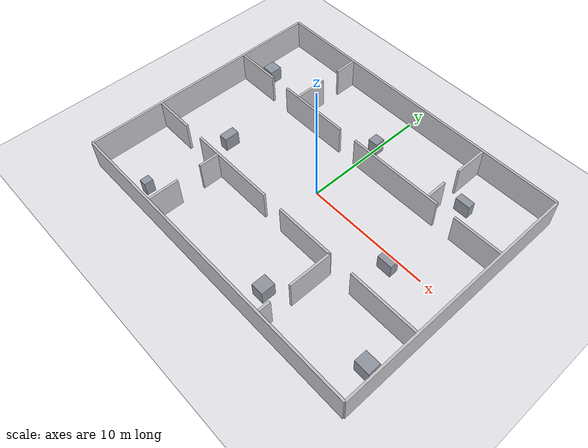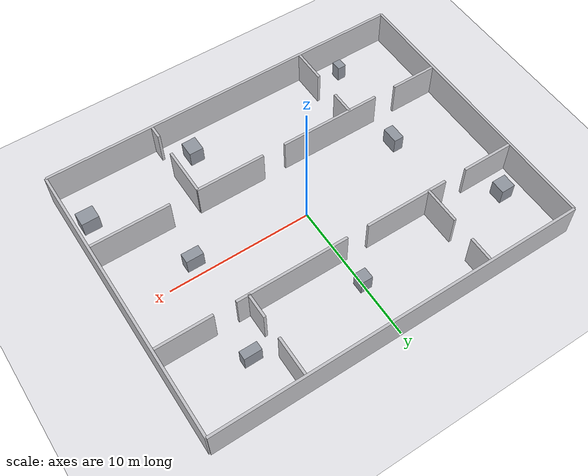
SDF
<?xml version="1.0"?>
<sdf version="1.9"><world name="new_room_world">
<plugin filename="gz-sim-physics-system" name="gz::sim::systems::Physics"/><plugin filename="gz-sim-user-commands-system" name="gz::sim::systems::UserCommands"/><plugin filename="gz-sim-scene-broadcaster-system" name="gz::sim::systems::SceneBroadcaster"/><plugin filename="gz-sim-sensors-system" name="gz::sim::systems::Sensors"><render_engine>ogre2</render_engine></plugin><plugin filename="gz-sim-imu-system" name="gz::sim::systems::Imu"/>
<physics name="new_room_realtime" type="ignored"><max_step_size>0.001</max_step_size><real_time_factor>1</real_time_factor></physics><gravity>0 0 -9.8</gravity><scene><ambient>0.85 0.85 0.87 1</ambient><background>0.68 0.68 0.71 1</background><shadows>false</shadows></scene><light name="sun" type="directional"><cast_shadows>false</cast_shadows><pose>0 0 10 0 0 0</pose><diffuse>0.95 0.95 0.95 1</diffuse><direction>-0.3 0.2 -1</direction></light>
<model name="new_room_ground"><static>true</static><link name="ground_link"><collision name="ground_collision"><geometry><plane><normal>0 0 1</normal><size>40 32</size></plane></geometry></collision><visual name="ground_visual"><geometry><plane><normal>0 0 1</normal><size>40 32</size></plane></geometry><material><ambient>0.92 0.92 0.94 1</ambient><diffuse>0.92 0.92 0.94 1</diffuse></material></visual></link></model>
<model name="mini_hospital_structure"><static>true</static><link name="structure">
<collision name="mx048_c000"><pose>0 10 1.25 0 0 0</pose><geometry><box><size>26 0.18 2.5</size></box></geometry></collision><visual name="mx048_v000"><pose>0 10 1.25 0 0 0</pose><geometry><box><size>26 0.18 2.5</size></box></geometry><material><ambient>0.78 0.78 0.80 1</ambient><diffuse>0.78 0.78 0.80 1</diffuse></material></visual>
<collision name="mx048_c001"><pose>0 -10 1.25 0 0 0</pose><geometry><box><size>26 0.18 2.5</size></box></geometry></collision><visual name="mx048_v001"><pose>0 -10 1.25 0 0 0</pose><geometry><box><size>26 0.18 2.5</size></box></geometry><material><ambient>0.78 0.78 0.80 1</ambient><diffuse>0.78 0.78 0.80 1</diffuse></material></visual>
<collision name="mx048_c002"><pose>-13 0 1.25 0 0 0</pose><geometry><box><size>0.18 20 2.5</size></box></geometry></collision><visual name="mx048_v002"><pose>-13 0 1.25 0 0 0</pose><geometry><box><size>0.18 20 2.5</size></box></geometry><material><ambient>0.78 0.78 0.80 1</ambient><diffuse>0.78 0.78 0.80 1</diffuse></material></visual>
<collision name="mx048_c003"><pose>13 0 1.25 0 0 0</pose><geometry><box><size>0.18 20 2.5</size></box></geometry></collision><visual name="mx048_v003"><pose>13 0 1.25 0 0 0</pose><geometry><box><size>0.18 20 2.5</size></box></geometry><material><ambient>0.78 0.78 0.80 1</ambient><diffuse>0.78 0.78 0.80 1</diffuse></material></visual>
<collision name="mx048_c004"><pose>-11.105 4 1.25 0 0 0</pose><geometry><box><size>3.61 0.18 2.5</size></box></geometry></collision><visual name="mx048_v004"><pose>-11.105 4 1.25 0 0 0</pose><geometry><box><size>3.61 0.18 2.5</size></box></geometry><material><ambient>0.78 0.78 0.80 1</ambient><diffuse>0.78 0.78 0.80 1</diffuse></material></visual>
<collision name="mx048_c005"><pose>-4.725 4 1.25 0 0 0</pose><geometry><box><size>5.95 0.18 2.5</size></box></geometry></collision><visual name="mx048_v005"><pose>-4.725 4 1.25 0 0 0</pose><geometry><box><size>5.95 0.18 2.5</size></box></geometry><material><ambient>0.78 0.78 0.80 1</ambient><diffuse>0.78 0.78 0.80 1</diffuse></material></visual>
<collision name="mx048_c006"><pose>3.65 4 1.25 0 0 0</pose><geometry><box><size>7.8 0.18 2.5</size></box></geometry></collision><visual name="mx048_v006"><pose>3.65 4 1.25 0 0 0</pose><geometry><box><size>7.8 0.18 2.5</size></box></geometry><material><ambient>0.78 0.78 0.80 1</ambient><diffuse>0.78 0.78 0.80 1</diffuse></material></visual>
<collision name="mx048_c007"><pose>10.98 4 1.25 0 0 0</pose><geometry><box><size>3.86 0.18 2.5</size></box></geometry></collision><visual name="mx048_v007"><pose>10.98 4 1.25 0 0 0</pose><geometry><box><size>3.86 0.18 2.5</size></box></geometry><material><ambient>0.78 0.78 0.80 1</ambient><diffuse>0.78 0.78 0.80 1</diffuse></material></visual>
<collision name="mx048_c008"><pose>-11.305 -4 1.25 0 0 0</pose><geometry><box><size>3.21 0.18 2.5</size></box></geometry></collision><visual name="mx048_v008"><pose>-11.305 -4 1.25 0 0 0</pose><geometry><box><size>3.21 0.18 2.5</size></box></geometry><material><ambient>0.78 0.78 0.80 1</ambient><diffuse>0.78 0.78 0.80 1</diffuse></material></visual>
<collision name="mx048_c009"><pose>-4.5 -4 1.25 0 0 0</pose><geometry><box><size>7.2 0.18 2.5</size></box></geometry></collision><visual name="mx048_v009"><pose>-4.5 -4 1.25 0 0 0</pose><geometry><box><size>7.2 0.18 2.5</size></box></geometry><material><ambient>0.78 0.78 0.80 1</ambient><diffuse>0.78 0.78 0.80 1</diffuse></material></visual>
<collision name="mx048_c010"><pose>3.125 -4 1.25 0 0 0</pose><geometry><box><size>4.85 0.18 2.5</size></box></geometry></collision><visual name="mx048_v010"><pose>3.125 -4 1.25 0 0 0</pose><geometry><box><size>4.85 0.18 2.5</size></box></geometry><material><ambient>0.78 0.78 0.80 1</ambient><diffuse>0.78 0.78 0.80 1</diffuse></material></visual>
<collision name="mx048_c011"><pose>10.18 -4 1.25 0 0 0</pose><geometry><box><size>5.46 0.18 2.5</size></box></geometry></collision><visual name="mx048_v011"><pose>10.18 -4 1.25 0 0 0</pose><geometry><box><size>5.46 0.18 2.5</size></box></geometry><material><ambient>0.78 0.78 0.80 1</ambient><diffuse>0.78 0.78 0.80 1</diffuse></material></visual>
<collision name="mx048_c012"><pose>-6.4 5.3 1.25 0 0 0</pose><geometry><box><size>0.18 2.6 2.5</size></box></geometry></collision><visual name="mx048_v012"><pose>-6.4 5.3 1.25 0 0 0</pose><geometry><box><size>0.18 2.6 2.5</size></box></geometry><material><ambient>0.78 0.78 0.80 1</ambient><diffuse>0.78 0.78 0.80 1</diffuse></material></visual>
<collision name="mx048_c013"><pose>-6.4 9.055 1.25 0 0 0</pose><geometry><box><size>0.18 1.71 2.5</size></box></geometry></collision><visual name="mx048_v013"><pose>-6.4 9.055 1.25 0 0 0</pose><geometry><box><size>0.18 1.71 2.5</size></box></geometry><material><ambient>0.78 0.78 0.80 1</ambient><diffuse>0.78 0.78 0.80 1</diffuse></material></visual>
<collision name="mx048_c014"><pose>6.7 4.875 1.25 0 0 0</pose><geometry><box><size>0.18 1.75 2.5</size></box></geometry></collision><visual name="mx048_v014"><pose>6.7 4.875 1.25 0 0 0</pose><geometry><box><size>0.18 1.75 2.5</size></box></geometry><material><ambient>0.78 0.78 0.80 1</ambient><diffuse>0.78 0.78 0.80 1</diffuse></material></visual>
<collision name="mx048_c015"><pose>6.7 8.58 1.25 0 0 0</pose><geometry><box><size>0.18 2.66 2.5</size></box></geometry></collision><visual name="mx048_v015"><pose>6.7 8.58 1.25 0 0 0</pose><geometry><box><size>0.18 2.66 2.5</size></box></geometry><material><ambient>0.78 0.78 0.80 1</ambient><diffuse>0.78 0.78 0.80 1</diffuse></material></visual>
<collision name="mx048_c016"><pose>-6 -8.73 1.25 0 0 0</pose><geometry><box><size>0.18 2.36 2.5</size></box></geometry></collision><visual name="mx048_v016"><pose>-6 -8.73 1.25 0 0 0</pose><geometry><box><size>0.18 2.36 2.5</size></box></geometry><material><ambient>0.78 0.78 0.80 1</ambient><diffuse>0.78 0.78 0.80 1</diffuse></material></visual>
<collision name="mx048_c017"><pose>-6 -4.825 1.25 0 0 0</pose><geometry><box><size>0.18 1.65 2.5</size></box></geometry></collision><visual name="mx048_v017"><pose>-6 -4.825 1.25 0 0 0</pose><geometry><box><size>0.18 1.65 2.5</size></box></geometry><material><ambient>0.78 0.78 0.80 1</ambient><diffuse>0.78 0.78 0.80 1</diffuse></material></visual>
<collision name="mx048_c018"><pose>5.5 -9.455 1.25 0 0 0</pose><geometry><box><size>0.18 0.91 2.5</size></box></geometry></collision><visual name="mx048_v018"><pose>5.5 -9.455 1.25 0 0 0</pose><geometry><box><size>0.18 0.91 2.5</size></box></geometry><material><ambient>0.78 0.78 0.80 1</ambient><diffuse>0.78 0.78 0.80 1</diffuse></material></visual>
<collision name="mx048_c019"><pose>5.5 -5.7 1.25 0 0 0</pose><geometry><box><size>0.18 3.4 2.5</size></box></geometry></collision><visual name="mx048_v019"><pose>5.5 -5.7 1.25 0 0 0</pose><geometry><box><size>0.18 3.4 2.5</size></box></geometry><material><ambient>0.78 0.78 0.80 1</ambient><diffuse>0.78 0.78 0.80 1</diffuse></material></visual>
<collision name="mx048_c020"><pose>-11.4 5.6 0.6 0 0 0</pose><geometry><box><size>1 1 1.2</size></box></geometry></collision><visual name="mx048_v020"><pose>-11.4 5.6 0.6 0 0 0</pose><geometry><box><size>1 1 1.2</size></box></geometry><material><ambient>0.58 0.60 0.64 1</ambient><diffuse>0.58 0.60 0.64 1</diffuse></material></visual>
<collision name="mx048_c021"><pose>0 6.1 0.6 0 0 0</pose><geometry><box><size>0.8 0.8 1.2</size></box></geometry></collision><visual name="mx048_v021"><pose>0 6.1 0.6 0 0 0</pose><geometry><box><size>0.8 0.8 1.2</size></box></geometry><material><ambient>0.58 0.60 0.64 1</ambient><diffuse>0.58 0.60 0.64 1</diffuse></material></visual>
<collision name="mx048_c022"><pose>8.2 6.5 0.6 0 0 0</pose><geometry><box><size>1.2 0.6 1.2</size></box></geometry></collision><visual name="mx048_v022"><pose>8.2 6.5 0.6 0 0 0</pose><geometry><box><size>1.2 0.6 1.2</size></box></geometry><material><ambient>0.58 0.60 0.64 1</ambient><diffuse>0.58 0.60 0.64 1</diffuse></material></visual>
<collision name="mx048_c023"><pose>-8.5 -8.7 0.6 0 0 0</pose><geometry><box><size>0.6 0.7 1.2</size></box></geometry></collision><visual name="mx048_v023"><pose>-8.5 -8.7 0.6 0 0 0</pose><geometry><box><size>0.6 0.7 1.2</size></box></geometry><material><ambient>0.58 0.60 0.64 1</ambient><diffuse>0.58 0.60 0.64 1</diffuse></material></visual>
<collision name="mx048_c024"><pose>3.7 -8.1 0.6 0 0 0</pose><geometry><box><size>1 1.1 1.2</size></box></geometry></collision><visual name="mx048_v024"><pose>3.7 -8.1 0.6 0 0 0</pose><geometry><box><size>1 1.1 1.2</size></box></geometry><material><ambient>0.58 0.60 0.64 1</ambient><diffuse>0.58 0.60 0.64 1</diffuse></material></visual>
<collision name="mx048_c025"><pose>11.9 -7 0.6 0 0 0</pose><geometry><box><size>1.2 1 1.2</size></box></geometry></collision><visual name="mx048_v025"><pose>11.9 -7 0.6 0 0 0</pose><geometry><box><size>1.2 1 1.2</size></box></geometry><material><ambient>0.58 0.60 0.64 1</ambient><diffuse>0.58 0.60 0.64 1</diffuse></material></visual>
<collision name="mx048_c026"><pose>-8 -1.6 0.6 0 0 0</pose><geometry><box><size>0.7 1.2 1.2</size></box></geometry></collision><visual name="mx048_v026"><pose>-8 -1.6 0.6 0 0 0</pose><geometry><box><size>0.7 1.2 1.2</size></box></geometry><material><ambient>0.58 0.60 0.64 1</ambient><diffuse>0.58 0.60 0.64 1</diffuse></material></visual>
<collision name="mx048_c027"><pose>7.8 -0.9 0.6 0 0 0</pose><geometry><box><size>1.2 0.7 1.2</size></box></geometry></collision><visual name="mx048_v027"><pose>7.8 -0.9 0.6 0 0 0</pose><geometry><box><size>1.2 0.7 1.2</size></box></geometry><material><ambient>0.58 0.60 0.64 1</ambient><diffuse>0.58 0.60 0.64 1</diffuse></material></visual>
</link></model></world></sdf>
